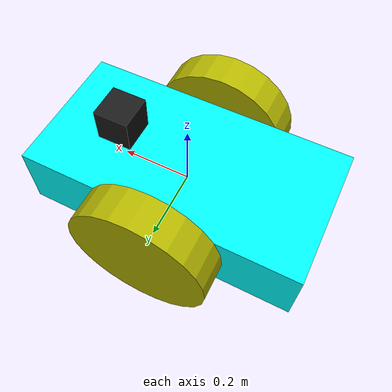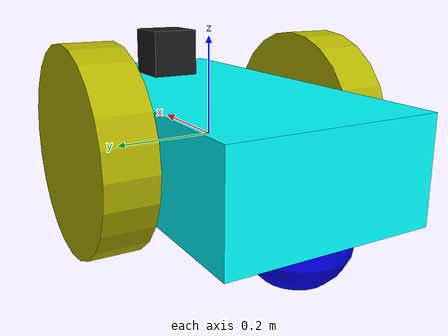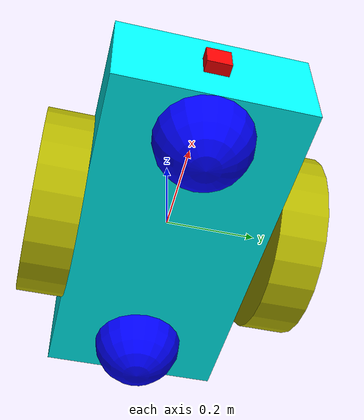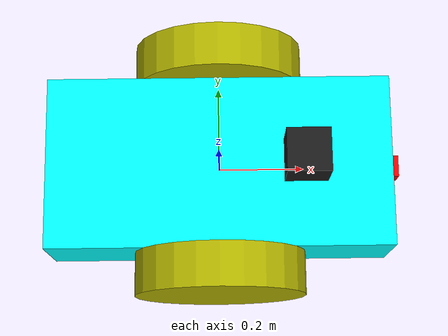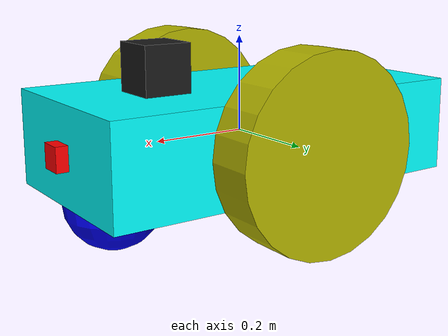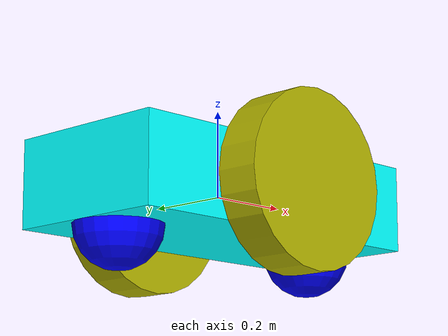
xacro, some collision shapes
<?xml version='1.0'?>

<robot name="my_robot" xmlns:xacro="http://www.ros.org/wiki/xacro">

 <xacro:include filename="$(find my_robot)/urdf/my_robot.gazebo" />

  <link name="robot_footprint"></link>

  <joint name="robot_footprint_joint" type="fixed">
    <origin xyz="0 0 0" rpy="0 0 0" />
    <parent link="robot_footprint"/>
    <child link="chassis" />
  </joint>

  <link name='chassis'>
    <pose>0 0 0.1 0 0 0</pose>

    <inertial>
      <mass value="30.0"/>
      <origin xyz="0 0 0" rpy=" 0 0 0"/>
      <inertia
          ixx="0.1" ixy="0" ixz="0"
          iyy="0.1" iyz="0"
          izz="0.1"
      />
    </inertial>

    <collision name='collision'>
      <origin xyz="0 0 0" rpy=" 0 0 0"/>
      <geometry>
        <box size="0.8 0.4 0.2"/>
      </geometry>
    </collision>

    <visual name='chassis_visual'>
      <origin xyz="0 0 0" rpy=" 0 0 0"/>
      <geometry>
        <box size="0.8 0.4 0.2"/>
      </geometry>
      <material name="turquoise">
          <color rgba="0 1.0 1.0 1.0"/>
      </material>
    </visual>

    <collision name='back_caster_collision'>
      <origin xyz="-0.3 0 -0.1" rpy=" 0 0 0"/>
      <geometry>
        <sphere radius="0.1"/>
      </geometry>
    </collision>

    <visual name='back_caster_visual'>
      <origin xyz="-0.3 0 -0.1" rpy=" 0 0 0"/>
      <geometry>
        <sphere radius="0.1"/>
      </geometry>
      <material name="blue">
          <color rgba="${0/255} ${0/255} ${255/255} 1.0"/>
      </material>
    </visual>

    <collision name='front_caster_collision'>
      <origin xyz="0.3 0 -0.1" rpy=" 0 0 0"/>
      <geometry>
        <sphere radius="0.1"/>
      </geometry>
    </collision>

    <visual name='front_caster_visual'>
      <origin xyz="0.3 0 -0.1" rpy=" 0 0 0"/>
      <geometry>
        <sphere radius="0.1"/>
      </geometry>
      <material name="blue">
          <color rgba="${0/255} ${0/255} ${255/255} 1.0"/>
      </material>
    </visual>
  </link>

  <link name="right_wheel">
    <inertial>
      <mass value="15.0"/>
      <origin xyz="0.0 0 0" rpy=" 0 1.5707 1.5707"/>
      <inertia
          ixx="0.1" ixy="0" ixz="0"
          iyy="0.1" iyz="0"
          izz="0.1"
      />
    </inertial>

    <collision name='right_wheel_collision'>
      <origin xyz="0 0 0" rpy=" 0 1.5707 1.5707"/>
      <geometry>
        <cylinder length="0.1" radius="0.2" />
      </geometry>
    </collision>

    <visual name='right_wheel_visual'>
      <origin xyz="0 0 0" rpy=" 0 1.5707 1.5707"/>
      <geometry>
        <cylinder length="0.1" radius="0.2" />
      </geometry>
      <material name="dark_yellow">
          <color rgba="0.7 0.7 0 1.0"/>
      </material>
    </visual>
  </link>

  <link name="left_wheel">
    <inertial>
      <mass value="15.0"/>
      <origin xyz="0.0 0 0" rpy=" 0 1.5707 1.5707"/>
      <inertia
          ixx="0.1" ixy="0" ixz="0"
          iyy="0.1" iyz="0"
          izz="0.1"
      />
    </inertial>

    <collision name='left_wheel_collision'>
      <origin xyz="0 0 0" rpy=" 0 1.5707 1.5707"/>
      <geometry>
        <cylinder length="0.1" radius="0.2" />
      </geometry>
    </collision>

    <visual name='left_wheel_visual'>
      <origin xyz="0 0 0" rpy=" 0 1.5707 1.5707"/>
      <geometry>
        <cylinder length="0.1" radius="0.2" />
      </geometry>
      <material name="dark_yellow">
          <color rgba="0.7 0.7 0 1.0"/>
      </material>
    </visual>
  </link>

  <joint type="continuous" name="left_wheel_hinge">
    <origin xyz="0 0.25 0" rpy="0 0 0"/>
    <child link="left_wheel"/>
    <parent link="chassis"/>
    <axis xyz="0 1 0" rpy="0 0 0"/>
    <limit effort="10000" velocity="1000"/>
    <dynamics damping="1.0" friction="1.0"/>
  </joint>

  <joint type="continuous" name="right_wheel_hinge">
    <origin xyz="0 -0.25 0" rpy="0 0 0"/>
    <child link="right_wheel"/>
    <parent link="chassis"/>
    <axis xyz="0 1 0" rpy="0 0 0"/>
    <limit effort="10000" velocity="1000"/>
    <dynamics damping="1.0" friction="1.0"/>
  </joint>

  <link name='camera'>

    <inertial>
      <mass value="0.1"/>
      <origin xyz="0.05 0.05 0.05" rpy=" 0 0 0"/>
      <inertia
          ixx="1e-6" ixy="0" ixz="0"
          iyy="1e-6" iyz="0"
          izz="1e-6"
      />
    </inertial>

    <collision name='camera_collision'>
      <origin xyz="0 0 0" rpy=" 0 0 0"/>
      <geometry>
        <box size="0.05 0.05 0.05"/>
      </geometry>
    </collision>

    <visual name='camera_visual'>
      <origin xyz="0 0 0" rpy=" 0 0 0"/>
      <geometry>
        <box size="0.05 0.05 0.05"/>
      </geometry>
      <material name="red">
          <color rgba="1.0 0 0 1.0"/>
      </material>
    </visual>
  </link>

  <joint type="fixed" name="camera_joint">
    <origin xyz="0.4 0 0" rpy="0 0 0"/>
    <child link="camera"/>
    <parent link="chassis"/>
    <axis xyz="0 1 0" rpy="0 0 0"/>
  </joint>

  <joint name="camera_optical_joint" type="fixed">
    <origin xyz="0 0 0" rpy="-1.5707 0 -1.5707"/>
    <parent link="camera"/>
    <child link="camera_link_optical"/>
  </joint>

  <link name="camera_link_optical">
  </link>

  <link name='hokuyo'>

    <inertial>
      <mass value="1e-5"/>
      <origin xyz="0 0 0" rpy=" 0 0 0"/>
      <inertia
          ixx="1e-6" ixy="0" ixz="0"
          iyy="1e-6" iyz="0"
          izz="1e-6"
      />
    </inertial>

    <collision name='hokuyo_collision'>
      <origin xyz="0 0 0" rpy=" 0 0 0"/>
      <geometry>
        <box size="0.1 0.1 0.1"/>
      </geometry>
    </collision>

    <visual name='hokuyo_visual'>
      <origin xyz="0 0 0" rpy=" 0 0 0"/>
      <geometry>
        <mesh filename ="package://my_robot/meshes/hokuyo.dae"/>
      </geometry>
      <material name="black">
          <color rgba="0.1 0.1 0.1 1.0"/>
      </material>
    </visual>
  </link>

  <joint type="fixed" name="hokuyo_joint">
    <origin xyz="0.2 0 0.15" rpy="0 0 0"/>
    <child link="hokuyo"/>
    <parent link="chassis"/>
    <axis xyz="0 1 0" rpy="0 0 0"/>
  </joint>

<gazebo reference="chassis">
    <material>Gazebo/Turquoise</material>
</gazebo>

<gazebo reference="right_wheel">
    <material>Gazebo/DarkYellow</material>
</gazebo>

<gazebo reference="left_wheel">
    <material>Gazebo/DarkYellow</material>
</gazebo>

<gazebo reference="camera">
    <material>Gazebo/Red</material>
</gazebo>

<gazebo reference="hokuyo">
    <material>Gazebo/Black</material>
</gazebo>

</robot>
